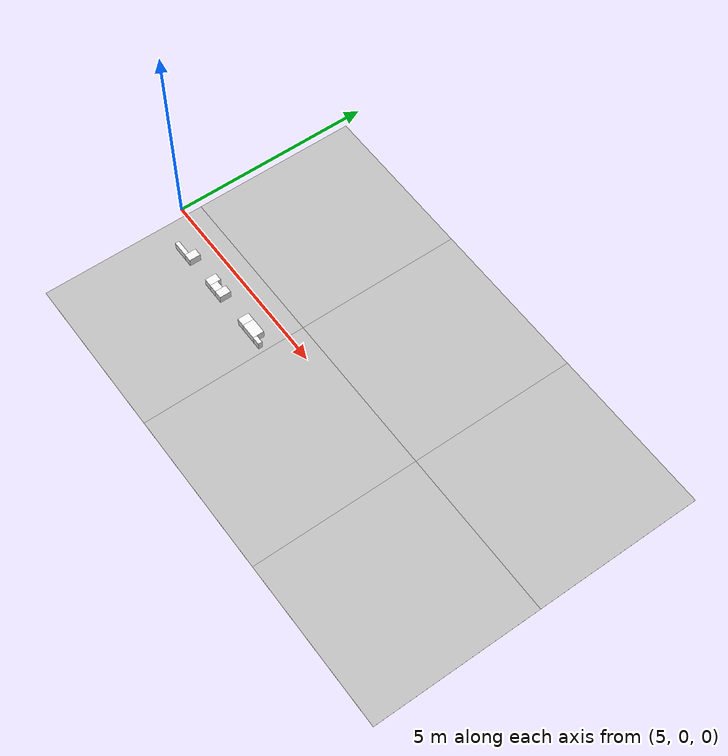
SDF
<sdf version="1.6">
 <world name="default">
  <model name="Tile/2-0">
   <static>1</static>
   <link name="link">
    <collision name="collision">
     <geometry><plane><normal>0 0 1</normal><size>4.096 4.096</size></plane></geometry>
     <surface><friction><ode><mu>100</mu><mu2>50</mu2></ode></friction></surface>
    </collision>
    <visual name="visual">
     <cast_shadows>0</cast_shadows>
     <geometry><plane><normal>0 0 1</normal><size>4.096 4.096</size></plane></geometry>
     <material>
      <script>
       <uri>file://materials/scripts</uri>
       <uri>file://materials/textures</uri>
       <name>Tile/c08d69ea3c361c19e62c11df394a3370aff6fbf820cfa9253d56978d77ba78ac</name>
      </script>
     </material>
    </visual>
   </link>
   <pose>7.24 -1.6520000000000001 0 0 -0 0</pose>
  </model>
  <model name="Tile/2-1">
   <static>1</static>
   <link name="link">
    <collision name="collision">
     <geometry><plane><normal>0 0 1</normal><size>4.096 4.096</size></plane></geometry>
     <surface><friction><ode><mu>100</mu><mu2>50</mu2></ode></friction></surface>
    </collision>
    <visual name="visual">
     <cast_shadows>0</cast_shadows>
     <geometry><plane><normal>0 0 1</normal><size>4.096 4.096</size></plane></geometry>
     <material>
      <script>
       <uri>file://materials/scripts</uri>
       <uri>file://materials/textures</uri>
       <name>Tile/13957a6de1f2afce18d7f1f64dacc2f21295e26ccf498256b0e1a51002cd5706</name>
      </script>
     </material>
    </visual>
   </link>
   <pose>7.24 2.444 0 0 -0 0</pose>
  </model>
  <model name="Tile/3-0">
   <static>1</static>
   <link name="link">
    <collision name="collision">
     <geometry><plane><normal>0 0 1</normal><size>4.096 4.096</size></plane></geometry>
     <surface><friction><ode><mu>100</mu><mu2>50</mu2></ode></friction></surface>
    </collision>
    <visual name="visual">
     <cast_shadows>0</cast_shadows>
     <geometry><plane><normal>0 0 1</normal><size>4.096 4.096</size></plane></geometry>
     <material>
      <script>
       <uri>file://materials/scripts</uri>
       <uri>file://materials/textures</uri>
       <name>Tile/5b4b2667aebdeabff7465a80aab668c68c7da6f92cf121cc6637428caa494271</name>
      </script>
     </material>
    </visual>
   </link>
   <pose>11.336 -1.6520000000000001 0 0 -0 0</pose>
  </model>
  <model name="Tile/3-1">
   <static>1</static>
   <link name="link">
    <collision name="collision">
     <geometry><plane><normal>0 0 1</normal><size>4.096 4.096</size></plane></geometry>
     <surface><friction><ode><mu>100</mu><mu2>50</mu2></ode></friction></surface>
    </collision>
    <visual name="visual">
     <cast_shadows>0</cast_shadows>
     <geometry><plane><normal>0 0 1</normal><size>4.096 4.096</size></plane></geometry>
     <material>
      <script>
       <uri>file://materials/scripts</uri>
       <uri>file://materials/textures</uri>
       <name>Tile/6765d09d4b84ba0dc5b003d615d35327976c0d136b5748911226ea48ef82a4c5</name>
      </script>
     </material>
    </visual>
   </link>
   <pose>11.336 2.444 0 0 -0 0</pose>
  </model>
  <model name="Tile/4-0">
   <static>1</static>
   <link name="link">
    <collision name="collision">
     <geometry><plane><normal>0 0 1</normal><size>4.096 4.096</size></plane></geometry>
     <surface><friction><ode><mu>100</mu><mu2>50</mu2></ode></friction></surface>
    </collision>
    <visual name="visual">
     <cast_shadows>0</cast_shadows>
     <geometry><plane><normal>0 0 1</normal><size>4.096 4.096</size></plane></geometry>
     <material>
      <script>
       <uri>file://materials/scripts</uri>
       <uri>file://materials/textures</uri>
       <name>Tile/5eab350b8220ac9944dbdfa4ac3288c7c17e24c3bf5df0dfcf6173d64dae00a1</name>
      </script>
     </material>
    </visual>
   </link>
   <pose>15.431999999999999 -1.6520000000000001 0 0 -0 0</pose>
  </model>
  <model name="Tile/4-1">
   <static>1</static>
   <link name="link">
    <collision name="collision">
     <geometry><plane><normal>0 0 1</normal><size>4.096 4.096</size></plane></geometry>
     <surface><friction><ode><mu>100</mu><mu2>50</mu2></ode></friction></surface>
    </collision>
    <visual name="visual">
     <cast_shadows>0</cast_shadows>
     <geometry><plane><normal>0 0 1</normal><size>4.096 4.096</size></plane></geometry>
     <material>
      <script>
       <uri>file://materials/scripts</uri>
       <uri>file://materials/textures</uri>
       <name>Tile/5eab350b8220ac9944dbdfa4ac3288c7c17e24c3bf5df0dfcf6173d64dae00a1</name>
      </script>
     </material>
    </visual>
   </link>
   <pose>15.431999999999999 2.444 0 0 -0 0</pose>
  </model>
  <model name="Obstacle/-60/0">
   <pose>6.050000000000002 -0.6499999999999999 0.1 0 0 -0.0</pose>
   <link name="link">
    <inertial>
     <mass>10</mass>
     <inertia>
      <ixx>0.166667</ixx>
      <ixy>0</ixy>
      <ixz>0</ixz>
      <iyy>0.166667</iyy>
      <iyz>0</iyz>
      <izz>0.166667</izz>
     </inertia>
    </inertial>
    <collision name="collision"><geometry><box><size>0.4 0.1 0.2</size></box></geometry></collision>
    <visual name="visual">
     <geometry><box><size>0.4 0.1 0.2</size></box></geometry>
     <material>
      <script><name>Gazebo/White</name><uri>file://media/materials/scripts/gazebo.material</uri></script>
     </material>
    </visual>
   </link>
  </model>
  <model name="Obstacle/-64/0">
   <pose>6.350000000000001 -0.5599999999999999 0.1 0 0 -0.0</pose>
   <link name="link">
    <inertial>
     <mass>10</mass>
     <inertia>
      <ixx>0.166667</ixx>
      <ixy>0</ixy>
      <ixz>0</ixz>
      <iyy>0.166667</iyy>
      <iyz>0</iyz>
      <izz>0.166667</izz>
     </inertia>
    </inertial>
    <collision name="collision"><geometry><box><size>0.2 0.28 0.2</size></box></geometry></collision>
    <visual name="visual">
     <geometry><box><size>0.2 0.28 0.2</size></box></geometry>
     <material>
      <script><name>Gazebo/White</name><uri>file://media/materials/scripts/gazebo.material</uri></script>
     </material>
    </visual>
   </link>
  </model>
  <model name="Obstacle/-71/0">
   <pose>7.1800000000000015 -0.5599999999999999 0.1 0 0 -0.0</pose>
   <link name="link">
    <inertial>
     <mass>10</mass>
     <inertia>
      <ixx>0.166667</ixx>
      <ixy>0</ixy>
      <ixz>0</ixz>
      <iyy>0.166667</iyy>
      <iyz>0</iyz>
      <izz>0.166667</izz>
     </inertia>
    </inertial>
    <collision name="collision"><geometry><box><size>0.2 0.28 0.2</size></box></geometry></collision>
    <visual name="visual">
     <geometry><box><size>0.2 0.28 0.2</size></box></geometry>
     <material>
      <script><name>Gazebo/White</name><uri>file://media/materials/scripts/gazebo.material</uri></script>
     </material>
    </visual>
   </link>
  </model>
  <model name="Obstacle/-75/0">
   <pose>7.380000000000002 -0.6 0.1 0 0 -0.0</pose>
   <link name="link">
    <inertial>
     <mass>10</mass>
     <inertia>
      <ixx>0.166667</ixx>
      <ixy>0</ixy>
      <ixz>0</ixz>
      <iyy>0.166667</iyy>
      <iyz>0</iyz>
      <izz>0.166667</izz>
     </inertia>
    </inertial>
    <collision name="collision"><geometry><box><size>0.2 0.2 0.2</size></box></geometry></collision>
    <visual name="visual">
     <geometry><box><size>0.2 0.2 0.2</size></box></geometry>
     <material>
      <script><name>Gazebo/White</name><uri>file://media/materials/scripts/gazebo.material</uri></script>
     </material>
    </visual>
   </link>
  </model>
  <model name="Obstacle/-79/0">
   <pose>7.580000000000002 -0.5599999999999999 0.1 0 0 -0.0</pose>
   <link name="link">
    <inertial>
     <mass>10</mass>
     <inertia>
      <ixx>0.166667</ixx>
      <ixy>0</ixy>
      <ixz>0</ixz>
      <iyy>0.166667</iyy>
      <iyz>0</iyz>
      <izz>0.166667</izz>
     </inertia>
    </inertial>
    <collision name="collision"><geometry><box><size>0.2 0.28 0.2</size></box></geometry></collision>
    <visual name="visual">
     <geometry><box><size>0.2 0.28 0.2</size></box></geometry>
     <material>
      <script><name>Gazebo/White</name><uri>file://media/materials/scripts/gazebo.material</uri></script>
     </material>
    </visual>
   </link>
  </model>
  <model name="Obstacle/-86/0">
   <pose>8.480000000000002 -0.5599999999999999 0.1 0 0 -0.0</pose>
   <link name="link">
    <inertial>
     <mass>10</mass>
     <inertia>
      <ixx>0.166667</ixx>
      <ixy>0</ixy>
      <ixz>0</ixz>
      <iyy>0.166667</iyy>
      <iyz>0</iyz>
      <izz>0.166667</izz>
     </inertia>
    </inertial>
    <collision name="collision"><geometry><box><size>0.2 0.28 0.2</size></box></geometry></collision>
    <visual name="visual">
     <geometry><box><size>0.2 0.28 0.2</size></box></geometry>
     <material>
      <script><name>Gazebo/White</name><uri>file://media/materials/scripts/gazebo.material</uri></script>
     </material>
    </visual>
   </link>
  </model>
  <model name="Obstacle/-90/0">
   <pose>8.780000000000001 -0.5599999999999999 0.1 0 0 -0.0</pose>
   <link name="link">
    <inertial>
     <mass>10</mass>
     <inertia>
      <ixx>0.166667</ixx>
      <ixy>0</ixy>
      <ixz>0</ixz>
      <iyy>0.166667</iyy>
      <iyz>0</iyz>
      <izz>0.166667</izz>
     </inertia>
    </inertial>
    <collision name="collision"><geometry><box><size>0.4 0.28 0.2</size></box></geometry></collision>
    <visual name="visual">
     <geometry><box><size>0.4 0.28 0.2</size></box></geometry>
     <material>
      <script><name>Gazebo/White</name><uri>file://media/materials/scripts/gazebo.material</uri></script>
     </material>
    </visual>
   </link>
  </model>
  <model name="Obstacle/-94/0">
   <pose>9.080000000000002 -0.6499999999999999 0.1 0 0 -0.0</pose>
   <link name="link">
    <inertial>
     <mass>10</mass>
     <inertia>
      <ixx>0.166667</ixx>
      <ixy>0</ixy>
      <ixz>0</ixz>
      <iyy>0.166667</iyy>
      <iyz>0</iyz>
      <izz>0.166667</izz>
     </inertia>
    </inertial>
    <collision name="collision"><geometry><box><size>0.2 0.1 0.2</size></box></geometry></collision>
    <visual name="visual">
     <geometry><box><size>0.2 0.1 0.2</size></box></geometry>
     <material>
      <script><name>Gazebo/White</name><uri>file://media/materials/scripts/gazebo.material</uri></script>
     </material>
    </visual>
   </link>
  </model>
 </world>
</sdf>
